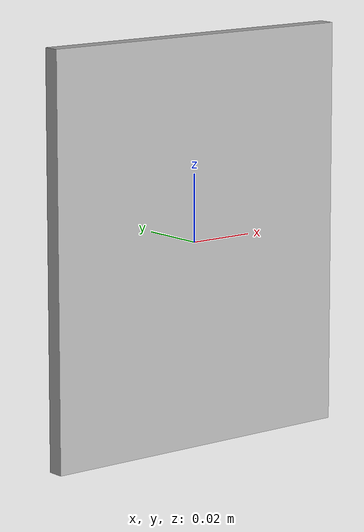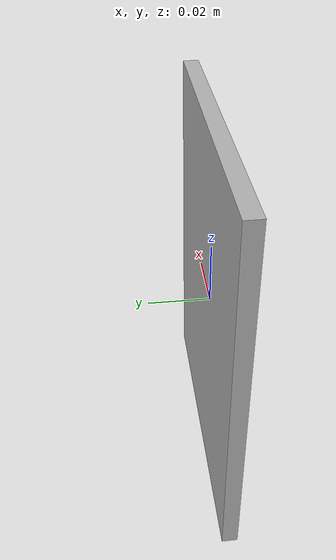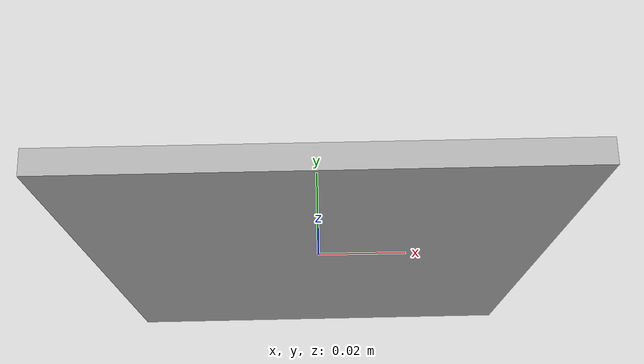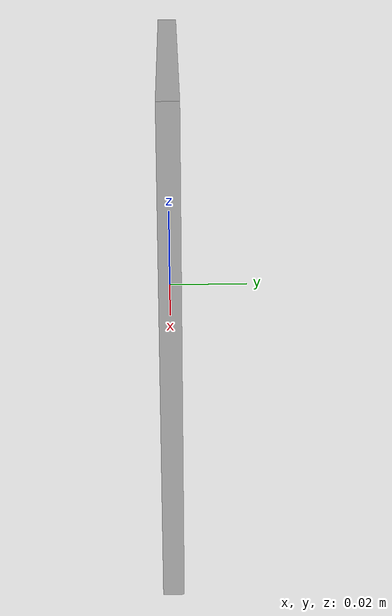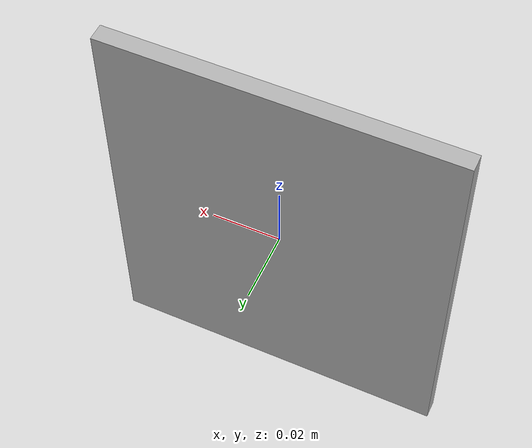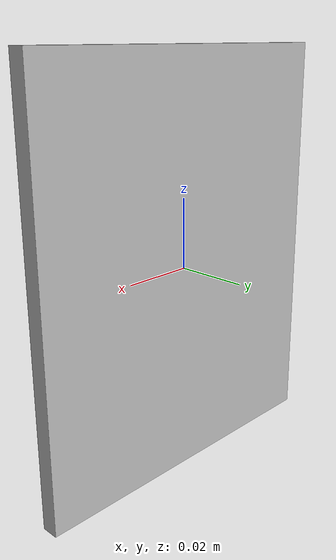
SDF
<?xml version="1.0"?>
<sdf version="1.8">
  <model name="hand_plate">
    <link name="plate_base">
      <inertial>
        <mass>0.2</mass>
        <inertia>
          <ixx>0.001500</ixx>
          <ixy>0</ixy>
          <ixz>0</ixz>
          <iyy>0.001800</iyy>
          <iyz>0</iyz>
          <izz>0.000375</izz>
        </inertia>
      </inertial>
      <visual name="visual">
        <geometry>
          <box>
            <size>0.10 0.005 0.12</size>
          </box>
        </geometry>
        <material>
          <ambient>0.3 0.3 0.3 1</ambient>
          <diffuse>0.7 0.7 0.7 1</diffuse>
          <specular>0.01 0.01 0.01 1</specular>
          <emissive>0 0 0 1</emissive>
        </material>
      </visual>
      <collision name="collision">
        <geometry>
          <box>
            <size>0.10 0.005 0.12</size>
          </box>
        </geometry>
        <drake:proximity_properties>
          <drake:rigid_hydroelastic/>
          <drake:mesh_resolution_hint>0.1</drake:mesh_resolution_hint>
          <drake:hunt_crossley_dissipation>1.0</drake:hunt_crossley_dissipation>
					<drake:mu_static>0.3</drake:mu_static>
					<drake:mu_dynamic>0.3</drake:mu_dynamic>
					<drake:relaxation_time>0.1</drake:relaxation_time>
        </drake:proximity_properties>
      </collision>
    </link>

    <frame name="body_frame">
      <pose relative_to="plate_base"/>
    </frame>

  </model>
</sdf>
